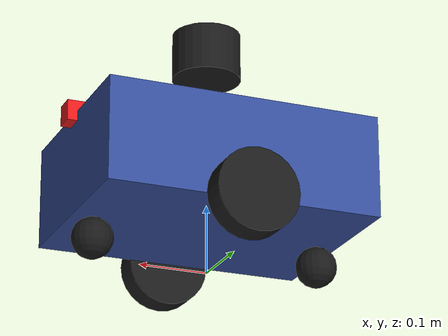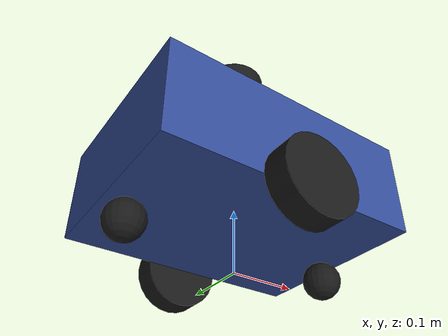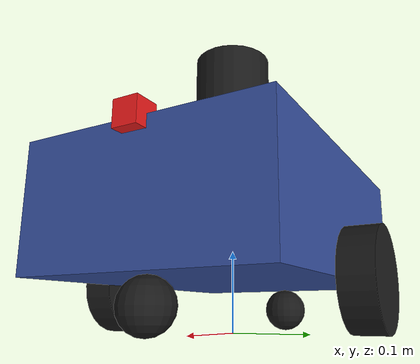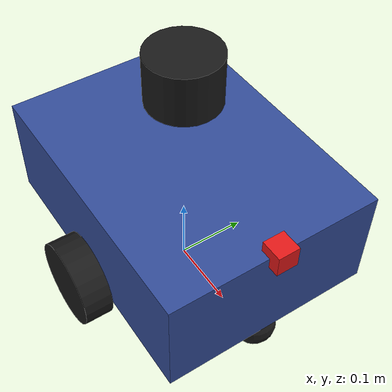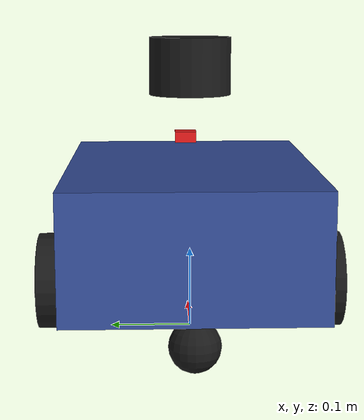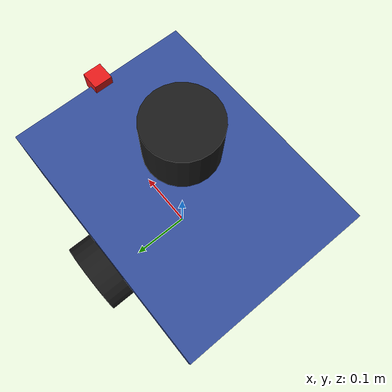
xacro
<?xml version="1.0"?>
<robot name="ego_bot" xmlns:xacro="http://www.ros.org/wiki/xacro">

  <xacro:property name="base_length" value="0.4"/>
  <xacro:property name="base_width" value="0.3"/>
  <xacro:property name="base_height" value="0.15"/>
  <xacro:property name="base_mass" value="5.0"/>

  <xacro:property name="wheel_radius" value="0.06"/>
  <xacro:property name="wheel_width" value="0.04"/>
  <xacro:property name="wheel_mass" value="0.5"/>
  <xacro:property name="wheel_separation" value="0.34"/>

  <xacro:property name="camera_size" value="0.03"/>

  <!-- Optional mass on a mast above the LiDAR, like a forklift with its load raised.
       payload_height is measured from the ground; 0 leaves the robot as it is. -->
  <xacro:arg name="payload_height" default="0.0"/>
  <xacro:arg name="payload_mass" default="6.0"/>
  <xacro:arg name="wheels" default="2"/>
  <xacro:property name="wheels" value="$(arg wheels)"/>
  <xacro:property name="wheel_base" value="0.28"/>
  <xacro:property name="payload_height" value="$(arg payload_height)"/>
  <xacro:property name="payload_mass" value="$(arg payload_mass)"/>

  <xacro:macro name="box_inertia" params="m x y z">
    <inertial>
      <mass value="${m}"/>
      <inertia
        ixx="${m * (y*y + z*z) / 12.0}" ixy="0.0" ixz="0.0"
        iyy="${m * (x*x + z*z) / 12.0}" iyz="0.0"
        izz="${m * (x*x + y*y) / 12.0}"/>
    </inertial>
  </xacro:macro>

  <xacro:macro name="cylinder_inertia" params="m r h">
    <inertial>
      <mass value="${m}"/>
      <inertia
        ixx="${m * (3*r*r + h*h) / 12.0}" ixy="0.0" ixz="0.0"
        iyy="${m * (3*r*r + h*h) / 12.0}" iyz="0.0"
        izz="${m * r*r / 2.0}"/>
    </inertial>
  </xacro:macro>

  <link name="base_footprint"/>

  <link name="base_link">
    <visual>
      <geometry><box size="${base_length} ${base_width} ${base_height}"/></geometry>
      <material name="chassis"><color rgba="0.2 0.3 0.6 1.0"/></material>
    </visual>
    <collision>
      <geometry><box size="${base_length} ${base_width} ${base_height}"/></geometry>
    </collision>
    <xacro:box_inertia m="${base_mass}" x="${base_length}" y="${base_width}" z="${base_height}"/>
  </link>

  <joint name="base_joint" type="fixed">
    <parent link="base_footprint"/>
    <child link="base_link"/>
    <origin xyz="0 0 ${wheel_radius + base_height/2.0}" rpy="0 0 0"/>
  </joint>

  <xacro:macro name="wheel" params="prefix y_reflect x:=0.0">
    <link name="${prefix}_wheel">
      <visual>
        <origin xyz="0 0 0" rpy="${pi/2} 0 0"/>
        <geometry><cylinder radius="${wheel_radius}" length="${wheel_width}"/></geometry>
        <material name="wheel"><color rgba="0.1 0.1 0.1 1.0"/></material>
      </visual>
      <collision>
        <origin xyz="0 0 0" rpy="${pi/2} 0 0"/>
        <geometry><cylinder radius="${wheel_radius}" length="${wheel_width}"/></geometry>
      </collision>
      <xacro:cylinder_inertia m="${wheel_mass}" r="${wheel_radius}" h="${wheel_width}"/>
    </link>
    <joint name="${prefix}_wheel_joint" type="continuous">
      <parent link="base_link"/>
      <child link="${prefix}_wheel"/>
      <origin xyz="${x} ${y_reflect * wheel_separation/2.0} ${-base_height/2.0}" rpy="0 0 0"/>
      <axis xyz="0 1 0"/>
    </joint>
  </xacro:macro>

  <xacro:if value="${wheels == 2}">
    <xacro:wheel prefix="left" y_reflect="1"/>
    <xacro:wheel prefix="right" y_reflect="-1"/>
  </xacro:if>
  <xacro:if value="${wheels == 4}">
    <xacro:wheel prefix="front_left" y_reflect="1" x="${wheel_base/2.0}"/>
    <xacro:wheel prefix="front_right" y_reflect="-1" x="${wheel_base/2.0}"/>
    <xacro:wheel prefix="rear_left" y_reflect="1" x="${-wheel_base/2.0}"/>
    <xacro:wheel prefix="rear_right" y_reflect="-1" x="${-wheel_base/2.0}"/>
  </xacro:if>

  <!-- Casters front and rear so the body cannot pitch when accelerating or braking. -->
  <xacro:macro name="caster" params="name x_reflect">
    <link name="${name}">
      <visual>
        <geometry><sphere radius="${wheel_radius/2.0}"/></geometry>
        <material name="caster"><color rgba="0.1 0.1 0.1 1.0"/></material>
      </visual>
      <collision>
        <geometry><sphere radius="${wheel_radius/2.0}"/></geometry>
        <surface><friction><ode><mu>0.1</mu><mu2>0.1</mu2></ode></friction></surface>
      </collision>
      <inertial>
        <mass value="0.2"/>
        <inertia ixx="1e-4" ixy="0" ixz="0" iyy="1e-4" iyz="0" izz="1e-4"/>
      </inertial>
    </link>
    <joint name="${name}_joint" type="fixed">
      <parent link="base_link"/>
      <child link="${name}"/>
      <origin xyz="${x_reflect * (base_length/2.0 - wheel_radius/2.0)} 0 ${-base_height/2.0 - wheel_radius/2.0}" rpy="0 0 0"/>
    </joint>
  </xacro:macro>

  <xacro:if value="${wheels == 2}">
    <xacro:caster name="caster" x_reflect="1"/>
    <xacro:caster name="rear_caster" x_reflect="-1"/>
  </xacro:if>

  <!-- Camera at the front of the chassis, looking forward. -->
  <link name="camera_link">
    <visual>
      <geometry><box size="${camera_size} ${camera_size} ${camera_size}"/></geometry>
      <material name="camera"><color rgba="0.9 0.1 0.1 1.0"/></material>
    </visual>
    <collision>
      <geometry><box size="${camera_size} ${camera_size} ${camera_size}"/></geometry>
    </collision>
    <xacro:box_inertia m="0.05" x="${camera_size}" y="${camera_size}" z="${camera_size}"/>
  </link>
  <joint name="camera_joint" type="fixed">
    <parent link="base_link"/>
    <child link="camera_link"/>
    <origin xyz="${base_length/2.0} 0 ${base_height/2.0}" rpy="0 0 0"/>
  </joint>

  <!-- Optical frame: z forward, x right, y down (REP-103). -->
  <link name="camera_optical_frame"/>
  <joint name="camera_optical_joint" type="fixed">
    <parent link="camera_link"/>
    <child link="camera_optical_frame"/>
    <origin xyz="0 0 0" rpy="${-pi/2} 0 ${-pi/2}"/>
  </joint>

  <!-- 3D LiDAR on a short mast, the primary detection sensor. Its fixed transform to
       camera_optical_frame is the camera-LiDAR extrinsic used by the fusion node. -->
  <link name="lidar3d_link">
    <visual>
      <geometry><cylinder radius="0.05" length="0.07"/></geometry>
      <material name="lidar"><color rgba="0.1 0.1 0.1 1.0"/></material>
    </visual>
    <collision>
      <geometry><cylinder radius="0.05" length="0.07"/></geometry>
    </collision>
    <inertial>
      <mass value="0.2"/>
      <inertia ixx="2e-4" ixy="0" ixz="0" iyy="2e-4" iyz="0" izz="2e-4"/>
    </inertial>
  </link>
  <joint name="lidar3d_joint" type="fixed">
    <parent link="base_link"/>
    <child link="lidar3d_link"/>
    <origin xyz="0 0 ${base_height/2.0 + 0.12}" rpy="0 0 0"/>
  </joint>

  <link name="imu_link"/>
  <joint name="imu_joint" type="fixed">
    <parent link="base_link"/>
    <child link="imu_link"/>
    <origin xyz="0 0 0" rpy="0 0 0"/>
  </joint>
  <link name="imu_mount"/>
  <joint name="imu_mount_joint" type="fixed">
    <parent link="base_link"/>
    <child link="imu_mount"/>
    <origin xyz="0 0 0" rpy="0.0175 -0.0105 0"/>
  </joint>

  <xacro:if value="${payload_height > 0}">
    <!-- Visual and mass only: no collision, so the LiDAR does not see the mast. -->
    <xacro:property name="mast_bottom" value="${base_height/2.0 + 0.155}"/>
    <xacro:property name="mast_top" value="${payload_height - wheel_radius - base_height/2.0 - 0.1}"/>
    <link name="mast">
      <visual>
        <origin xyz="0 0 ${(mast_top - mast_bottom)/2.0}" rpy="0 0 0"/>
        <geometry><cylinder radius="0.015" length="${mast_top - mast_bottom}"/></geometry>
        <material name="mast"><color rgba="0.6 0.6 0.6 1.0"/></material>
      </visual>
      <inertial>
        <mass value="0.1"/>
        <inertia ixx="1e-4" ixy="0" ixz="0" iyy="1e-4" iyz="0" izz="1e-5"/>
      </inertial>
    </link>
    <joint name="mast_joint" type="fixed">
      <parent link="base_link"/>
      <child link="mast"/>
      <origin xyz="0 0 ${mast_bottom}" rpy="0 0 0"/>
    </joint>
    <link name="payload">
      <visual>
        <geometry><box size="0.2 0.2 0.2"/></geometry>
        <material name="payload"><color rgba="0.9 0.6 0.1 1.0"/></material>
      </visual>
      <xacro:box_inertia m="${payload_mass}" x="0.2" y="0.2" z="0.2"/>
    </link>
    <joint name="payload_joint" type="fixed">
      <parent link="base_link"/>
      <child link="payload"/>
      <origin xyz="0 0 ${payload_height - wheel_radius - base_height/2.0}" rpy="0 0 0"/>
    </joint>
  </xacro:if>

  <xacro:include filename="$(find perception_sim)/urdf/robot.gazebo.xacro"/>

</robot>
